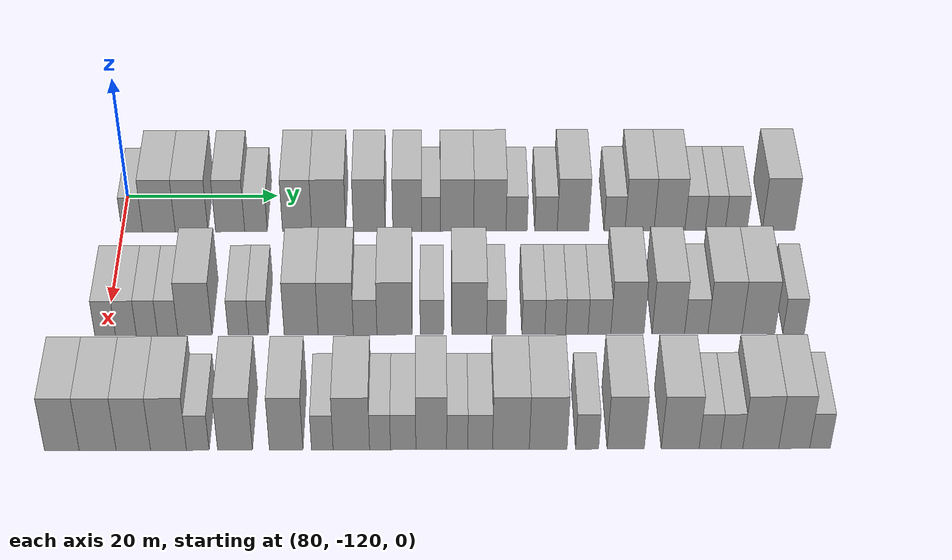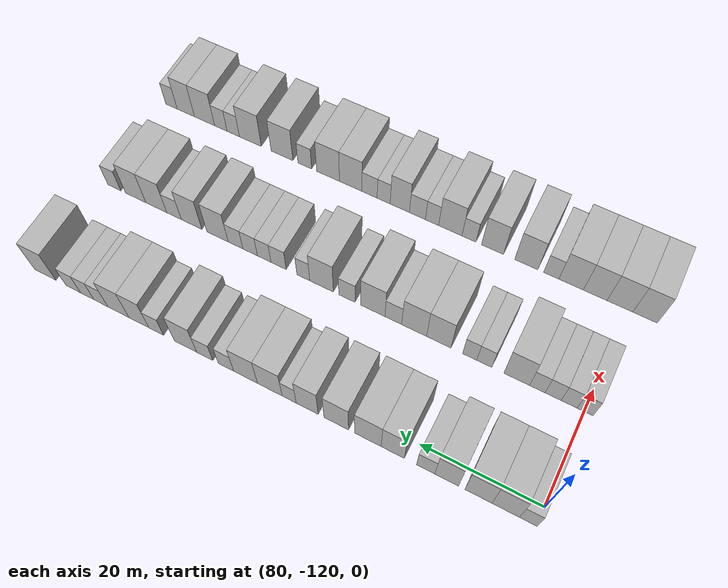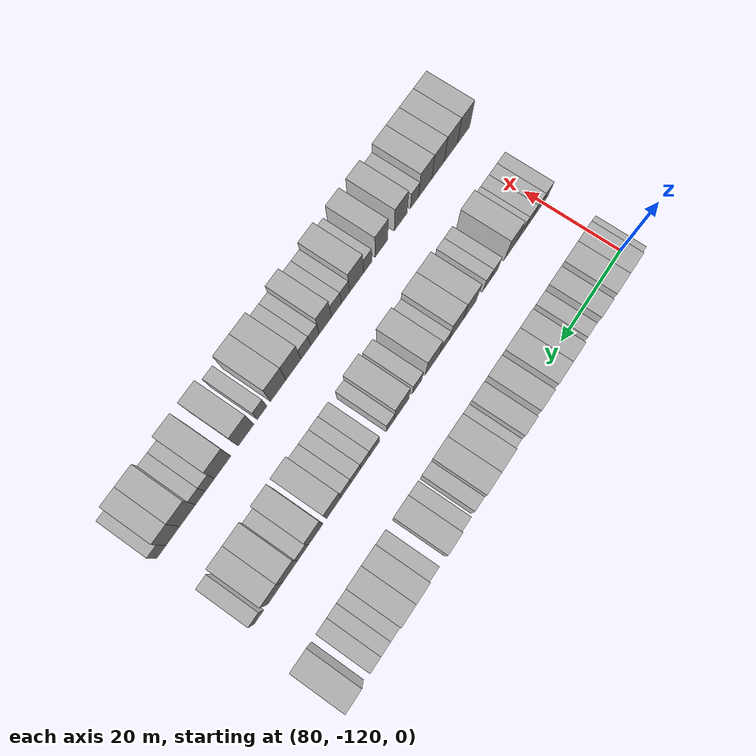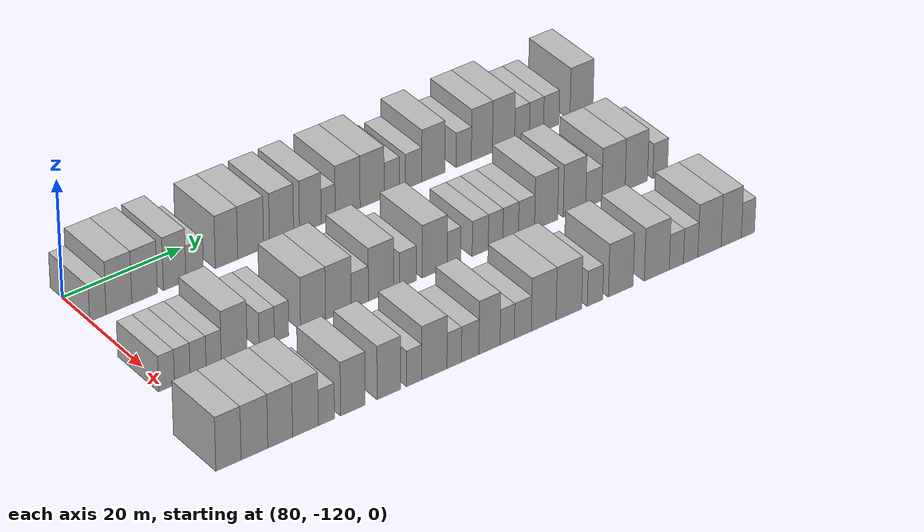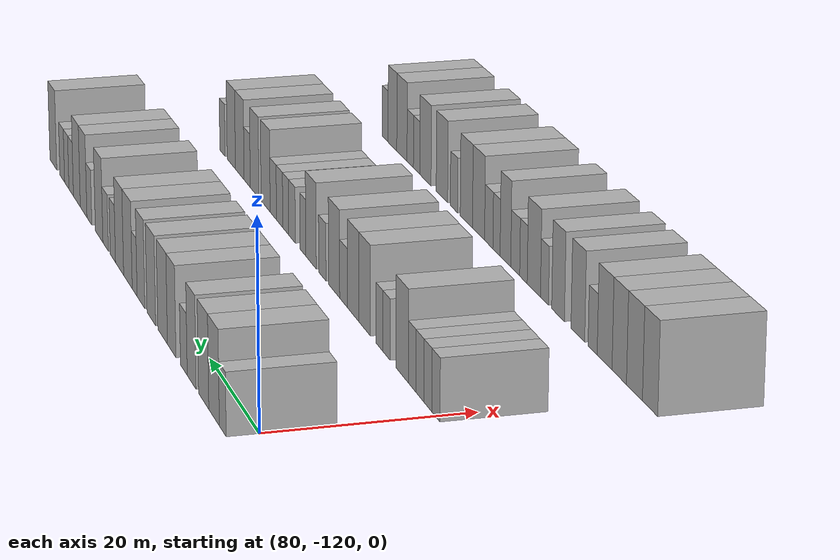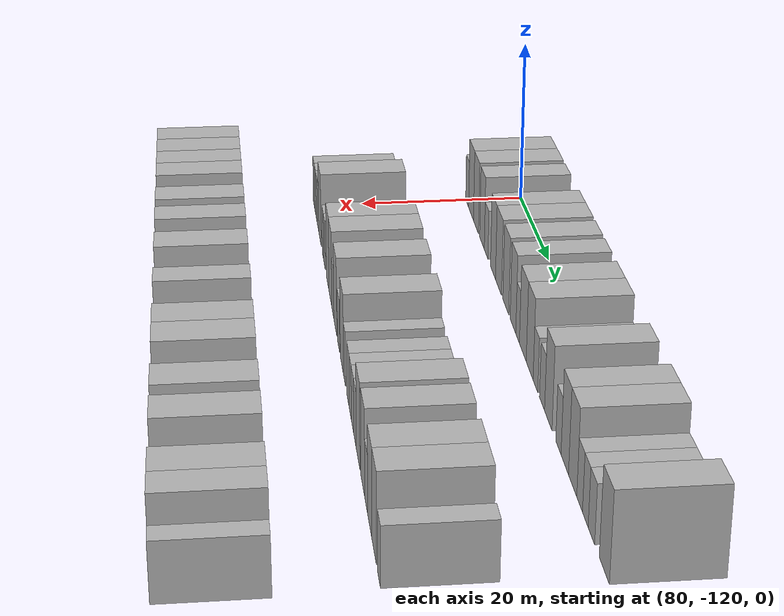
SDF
<sdf version="1.6">
 <world name="default">
  <model name="building_580">
   <static>1</static>
   <pose>82.0000 -118.6920 0 0.000000 0.000000 0.000000</pose>
   <link name="link">
    <pose>0 0 3.00 0 0 0</pose>
    <collision name="collision"><geometry><box><size>10.0000 2.7208 6.0000</size></box></geometry></collision>
    <visual name="visual">
     <cast_shadows>0</cast_shadows>
     <geometry><box><size>10.0000 2.7208 6.0000</size></box></geometry>
     <material>
      <script>
       <uri>model://HANNAS_wall/materials/scripts</uri>
       <uri>model://HANNAS_wall/materials/textures</uri>
       <name>vrc/HANNAS_wall</name>
      </script>
     </material>
    </visual>
   </link>
  </model>
  <model name="building_581">
   <static>1</static>
   <pose>82.0000 -115.1905 0 0.000000 0.000000 0.000000</pose>
   <link name="link">
    <pose>0 0 4.50 0 0 0</pose>
    <collision name="collision"><geometry><box><size>10.0000 4.2822 9.0000</size></box></geometry></collision>
    <visual name="visual">
     <cast_shadows>0</cast_shadows>
     <geometry><box><size>10.0000 4.2822 9.0000</size></box></geometry>
     <material>
      <script>
       <uri>model://HANNAS_wall/materials/scripts</uri>
       <uri>model://HANNAS_wall/materials/textures</uri>
       <name>vrc/HANNAS_wall</name>
      </script>
     </material>
    </visual>
   </link>
  </model>
  <model name="building_582">
   <static>1</static>
   <pose>82.0000 -110.9012 0 0.000000 0.000000 0.000000</pose>
   <link name="link">
    <pose>0 0 4.50 0 0 0</pose>
    <collision name="collision"><geometry><box><size>10.0000 4.2965 9.0000</size></box></geometry></collision>
    <visual name="visual">
     <cast_shadows>0</cast_shadows>
     <geometry><box><size>10.0000 4.2965 9.0000</size></box></geometry>
     <material>
      <script>
       <uri>model://HANNAS_wall/materials/scripts</uri>
       <uri>model://HANNAS_wall/materials/textures</uri>
       <name>vrc/HANNAS_wall</name>
      </script>
     </material>
    </visual>
   </link>
  </model>
  <model name="building_583">
   <static>1</static>
   <pose>82.0000 -105.8392 0 0.000000 0.000000 0.000000</pose>
   <link name="link">
    <pose>0 0 4.50 0 0 0</pose>
    <collision name="collision"><geometry><box><size>10.0000 3.8275 9.0000</size></box></geometry></collision>
    <visual name="visual">
     <cast_shadows>0</cast_shadows>
     <geometry><box><size>10.0000 3.8275 9.0000</size></box></geometry>
     <material>
      <script>
       <uri>model://HANNAS_wall/materials/scripts</uri>
       <uri>model://HANNAS_wall/materials/textures</uri>
       <name>vrc/HANNAS_wall</name>
      </script>
     </material>
    </visual>
   </link>
  </model>
  <model name="building_584">
   <static>1</static>
   <pose>82.0000 -102.4418 0 0.000000 0.000000 0.000000</pose>
   <link name="link">
    <pose>0 0 3.00 0 0 0</pose>
    <collision name="collision"><geometry><box><size>10.0000 2.9673 6.0000</size></box></geometry></collision>
    <visual name="visual">
     <cast_shadows>0</cast_shadows>
     <geometry><box><size>10.0000 2.9673 6.0000</size></box></geometry>
     <material>
      <script>
       <uri>model://HANNAS_wall/materials/scripts</uri>
       <uri>model://HANNAS_wall/materials/textures</uri>
       <name>vrc/HANNAS_wall</name>
      </script>
     </material>
    </visual>
   </link>
  </model>
  <model name="building_585">
   <static>1</static>
   <pose>82.0000 -97.0383 0 0.000000 0.000000 0.000000</pose>
   <link name="link">
    <pose>0 0 4.50 0 0 0</pose>
    <collision name="collision"><geometry><box><size>10.0000 3.8398 9.0000</size></box></geometry></collision>
    <visual name="visual">
     <cast_shadows>0</cast_shadows>
     <geometry><box><size>10.0000 3.8398 9.0000</size></box></geometry>
     <material>
      <script>
       <uri>model://HANNAS_wall/materials/scripts</uri>
       <uri>model://HANNAS_wall/materials/textures</uri>
       <name>vrc/HANNAS_wall</name>
      </script>
     </material>
    </visual>
   </link>
  </model>
  <model name="building_586">
   <static>1</static>
   <pose>82.0000 -92.8874 0 0.000000 0.000000 0.000000</pose>
   <link name="link">
    <pose>0 0 4.50 0 0 0</pose>
    <collision name="collision"><geometry><box><size>10.0000 4.4619 9.0000</size></box></geometry></collision>
    <visual name="visual">
     <cast_shadows>0</cast_shadows>
     <geometry><box><size>10.0000 4.4619 9.0000</size></box></geometry>
     <material>
      <script>
       <uri>model://HANNAS_wall/materials/scripts</uri>
       <uri>model://HANNAS_wall/materials/textures</uri>
       <name>vrc/HANNAS_wall</name>
      </script>
     </material>
    </visual>
   </link>
  </model>
  <model name="building_587">
   <static>1</static>
   <pose>82.0000 -87.5685 0 0.000000 0.000000 0.000000</pose>
   <link name="link">
    <pose>0 0 4.50 0 0 0</pose>
    <collision name="collision"><geometry><box><size>10.0000 4.1759 9.0000</size></box></geometry></collision>
    <visual name="visual">
     <cast_shadows>0</cast_shadows>
     <geometry><box><size>10.0000 4.1759 9.0000</size></box></geometry>
     <material>
      <script>
       <uri>model://HANNAS_wall/materials/scripts</uri>
       <uri>model://HANNAS_wall/materials/textures</uri>
       <name>vrc/HANNAS_wall</name>
      </script>
     </material>
    </visual>
   </link>
  </model>
  <model name="building_588">
   <static>1</static>
   <pose>82.0000 -82.5807 0 0.000000 0.000000 0.000000</pose>
   <link name="link">
    <pose>0 0 4.50 0 0 0</pose>
    <collision name="collision"><geometry><box><size>10.0000 3.7998 9.0000</size></box></geometry></collision>
    <visual name="visual">
     <cast_shadows>0</cast_shadows>
     <geometry><box><size>10.0000 3.7998 9.0000</size></box></geometry>
     <material>
      <script>
       <uri>model://HANNAS_wall/materials/scripts</uri>
       <uri>model://HANNAS_wall/materials/textures</uri>
       <name>vrc/HANNAS_wall</name>
      </script>
     </material>
    </visual>
   </link>
  </model>
  <model name="building_589">
   <static>1</static>
   <pose>82.0000 -79.4624 0 0.000000 0.000000 0.000000</pose>
   <link name="link">
    <pose>0 0 3.00 0 0 0</pose>
    <collision name="collision"><geometry><box><size>10.0000 2.4368 6.0000</size></box></geometry></collision>
    <visual name="visual">
     <cast_shadows>0</cast_shadows>
     <geometry><box><size>10.0000 2.4368 6.0000</size></box></geometry>
     <material>
      <script>
       <uri>model://HANNAS_wall/materials/scripts</uri>
       <uri>model://HANNAS_wall/materials/textures</uri>
       <name>vrc/HANNAS_wall</name>
      </script>
     </material>
    </visual>
   </link>
  </model>
  <model name="building_590">
   <static>1</static>
   <pose>82.0000 -76.0565 0 0.000000 0.000000 0.000000</pose>
   <link name="link">
    <pose>0 0 4.50 0 0 0</pose>
    <collision name="collision"><geometry><box><size>10.0000 4.3750 9.0000</size></box></geometry></collision>
    <visual name="visual">
     <cast_shadows>0</cast_shadows>
     <geometry><box><size>10.0000 4.3750 9.0000</size></box></geometry>
     <material>
      <script>
       <uri>model://HANNAS_wall/materials/scripts</uri>
       <uri>model://HANNAS_wall/materials/textures</uri>
       <name>vrc/HANNAS_wall</name>
      </script>
     </material>
    </visual>
   </link>
  </model>
  <model name="building_591">
   <static>1</static>
   <pose>82.0000 -71.7445 0 0.000000 0.000000 0.000000</pose>
   <link name="link">
    <pose>0 0 4.50 0 0 0</pose>
    <collision name="collision"><geometry><box><size>10.0000 4.2490 9.0000</size></box></geometry></collision>
    <visual name="visual">
     <cast_shadows>0</cast_shadows>
     <geometry><box><size>10.0000 4.2490 9.0000</size></box></geometry>
     <material>
      <script>
       <uri>model://HANNAS_wall/materials/scripts</uri>
       <uri>model://HANNAS_wall/materials/textures</uri>
       <name>vrc/HANNAS_wall</name>
      </script>
     </material>
    </visual>
   </link>
  </model>
  <model name="building_592">
   <static>1</static>
   <pose>82.0000 -68.2290 0 0.000000 0.000000 0.000000</pose>
   <link name="link">
    <pose>0 0 3.00 0 0 0</pose>
    <collision name="collision"><geometry><box><size>10.0000 2.7820 6.0000</size></box></geometry></collision>
    <visual name="visual">
     <cast_shadows>0</cast_shadows>
     <geometry><box><size>10.0000 2.7820 6.0000</size></box></geometry>
     <material>
      <script>
       <uri>model://HANNAS_wall/materials/scripts</uri>
       <uri>model://HANNAS_wall/materials/textures</uri>
       <name>vrc/HANNAS_wall</name>
      </script>
     </material>
    </visual>
   </link>
  </model>
  <model name="building_593">
   <static>1</static>
   <pose>82.0000 -64.3658 0 0.000000 0.000000 0.000000</pose>
   <link name="link">
    <pose>0 0 3.00 0 0 0</pose>
    <collision name="collision"><geometry><box><size>10.0000 2.9443 6.0000</size></box></geometry></collision>
    <visual name="visual">
     <cast_shadows>0</cast_shadows>
     <geometry><box><size>10.0000 2.9443 6.0000</size></box></geometry>
     <material>
      <script>
       <uri>model://HANNAS_wall/materials/scripts</uri>
       <uri>model://HANNAS_wall/materials/textures</uri>
       <name>vrc/HANNAS_wall</name>
      </script>
     </material>
    </visual>
   </link>
  </model>
  <model name="building_594">
   <static>1</static>
   <pose>82.0000 -60.8182 0 0.000000 0.000000 0.000000</pose>
   <link name="link">
    <pose>0 0 4.50 0 0 0</pose>
    <collision name="collision"><geometry><box><size>10.0000 4.1509 9.0000</size></box></geometry></collision>
    <visual name="visual">
     <cast_shadows>0</cast_shadows>
     <geometry><box><size>10.0000 4.1509 9.0000</size></box></geometry>
     <material>
      <script>
       <uri>model://HANNAS_wall/materials/scripts</uri>
       <uri>model://HANNAS_wall/materials/textures</uri>
       <name>vrc/HANNAS_wall</name>
      </script>
     </material>
    </visual>
   </link>
  </model>
  <model name="building_595">
   <static>1</static>
   <pose>82.0000 -55.3543 0 0.000000 0.000000 0.000000</pose>
   <link name="link">
    <pose>0 0 3.00 0 0 0</pose>
    <collision name="collision"><geometry><box><size>10.0000 2.7769 6.0000</size></box></geometry></collision>
    <visual name="visual">
     <cast_shadows>0</cast_shadows>
     <geometry><box><size>10.0000 2.7769 6.0000</size></box></geometry>
     <material>
      <script>
       <uri>model://HANNAS_wall/materials/scripts</uri>
       <uri>model://HANNAS_wall/materials/textures</uri>
       <name>vrc/HANNAS_wall</name>
      </script>
     </material>
    </visual>
   </link>
  </model>
  <model name="building_596">
   <static>1</static>
   <pose>82.0000 -52.0593 0 0.000000 0.000000 0.000000</pose>
   <link name="link">
    <pose>0 0 4.50 0 0 0</pose>
    <collision name="collision"><geometry><box><size>10.0000 3.8131 9.0000</size></box></geometry></collision>
    <visual name="visual">
     <cast_shadows>0</cast_shadows>
     <geometry><box><size>10.0000 3.8131 9.0000</size></box></geometry>
     <material>
      <script>
       <uri>model://HANNAS_wall/materials/scripts</uri>
       <uri>model://HANNAS_wall/materials/textures</uri>
       <name>vrc/HANNAS_wall</name>
      </script>
     </material>
    </visual>
   </link>
  </model>
  <model name="building_597">
   <static>1</static>
   <pose>82.0000 -48.1294 0 0.000000 0.000000 0.000000</pose>
   <link name="link">
    <pose>0 0 4.50 0 0 0</pose>
    <collision name="collision"><geometry><box><size>10.0000 4.0466 9.0000</size></box></geometry></collision>
    <visual name="visual">
     <cast_shadows>0</cast_shadows>
     <geometry><box><size>10.0000 4.0466 9.0000</size></box></geometry>
     <material>
      <script>
       <uri>model://HANNAS_wall/materials/scripts</uri>
       <uri>model://HANNAS_wall/materials/textures</uri>
       <name>vrc/HANNAS_wall</name>
      </script>
     </material>
    </visual>
   </link>
  </model>
  <model name="building_598">
   <static>1</static>
   <pose>82.0000 -44.7589 0 0.000000 0.000000 0.000000</pose>
   <link name="link">
    <pose>0 0 3.00 0 0 0</pose>
    <collision name="collision"><geometry><box><size>10.0000 2.6945 6.0000</size></box></geometry></collision>
    <visual name="visual">
     <cast_shadows>0</cast_shadows>
     <geometry><box><size>10.0000 2.6945 6.0000</size></box></geometry>
     <material>
      <script>
       <uri>model://HANNAS_wall/materials/scripts</uri>
       <uri>model://HANNAS_wall/materials/textures</uri>
       <name>vrc/HANNAS_wall</name>
      </script>
     </material>
    </visual>
   </link>
  </model>
  <model name="building_599">
   <static>1</static>
   <pose>82.0000 -42.1036 0 0.000000 0.000000 0.000000</pose>
   <link name="link">
    <pose>0 0 3.00 0 0 0</pose>
    <collision name="collision"><geometry><box><size>10.0000 2.6161 6.0000</size></box></geometry></collision>
    <visual name="visual">
     <cast_shadows>0</cast_shadows>
     <geometry><box><size>10.0000 2.6161 6.0000</size></box></geometry>
     <material>
      <script>
       <uri>model://HANNAS_wall/materials/scripts</uri>
       <uri>model://HANNAS_wall/materials/textures</uri>
       <name>vrc/HANNAS_wall</name>
      </script>
     </material>
    </visual>
   </link>
  </model>
  <model name="building_600">
   <static>1</static>
   <pose>82.0000 -39.3558 0 0.000000 0.000000 0.000000</pose>
   <link name="link">
    <pose>0 0 3.00 0 0 0</pose>
    <collision name="collision"><geometry><box><size>10.0000 2.8793 6.0000</size></box></geometry></collision>
    <visual name="visual">
     <cast_shadows>0</cast_shadows>
     <geometry><box><size>10.0000 2.8793 6.0000</size></box></geometry>
     <material>
      <script>
       <uri>model://HANNAS_wall/materials/scripts</uri>
       <uri>model://HANNAS_wall/materials/textures</uri>
       <name>vrc/HANNAS_wall</name>
      </script>
     </material>
    </visual>
   </link>
  </model>
  <model name="building_601">
   <static>1</static>
   <pose>82.0000 -33.7802 0 0.000000 0.000000 0.000000</pose>
   <link name="link">
    <pose>0 0 4.50 0 0 0</pose>
    <collision name="collision"><geometry><box><size>10.0000 4.2720 9.0000</size></box></geometry></collision>
    <visual name="visual">
     <cast_shadows>0</cast_shadows>
     <geometry><box><size>10.0000 4.2720 9.0000</size></box></geometry>
     <material>
      <script>
       <uri>model://HANNAS_wall/materials/scripts</uri>
       <uri>model://HANNAS_wall/materials/textures</uri>
       <name>vrc/HANNAS_wall</name>
      </script>
     </material>
    </visual>
   </link>
  </model>
  <model name="building_753">
   <static>1</static>
   <pose>101.0000 -120.1035 0 0.000000 0.000000 0.000000</pose>
   <link name="link">
    <pose>0 0 3.00 0 0 0</pose>
    <collision name="collision"><geometry><box><size>10.0000 2.5795 6.0000</size></box></geometry></collision>
    <visual name="visual">
     <cast_shadows>0</cast_shadows>
     <geometry><box><size>10.0000 2.5795 6.0000</size></box></geometry>
     <material>
      <script>
       <uri>model://HANNAS_wall/materials/scripts</uri>
       <uri>model://HANNAS_wall/materials/textures</uri>
       <name>vrc/HANNAS_wall</name>
      </script>
     </material>
    </visual>
   </link>
  </model>
  <model name="building_754">
   <static>1</static>
   <pose>101.0000 -117.5175 0 0.000000 0.000000 0.000000</pose>
   <link name="link">
    <pose>0 0 3.00 0 0 0</pose>
    <collision name="collision"><geometry><box><size>10.0000 2.5925 6.0000</size></box></geometry></collision>
    <visual name="visual">
     <cast_shadows>0</cast_shadows>
     <geometry><box><size>10.0000 2.5925 6.0000</size></box></geometry>
     <material>
      <script>
       <uri>model://HANNAS_wall/materials/scripts</uri>
       <uri>model://HANNAS_wall/materials/textures</uri>
       <name>vrc/HANNAS_wall</name>
      </script>
     </material>
    </visual>
   </link>
  </model>
  <model name="building_755">
   <static>1</static>
   <pose>101.0000 -114.9020 0 0.000000 0.000000 0.000000</pose>
   <link name="link">
    <pose>0 0 3.00 0 0 0</pose>
    <collision name="collision"><geometry><box><size>10.0000 2.6384 6.0000</size></box></geometry></collision>
    <visual name="visual">
     <cast_shadows>0</cast_shadows>
     <geometry><box><size>10.0000 2.6384 6.0000</size></box></geometry>
     <material>
      <script>
       <uri>model://HANNAS_wall/materials/scripts</uri>
       <uri>model://HANNAS_wall/materials/textures</uri>
       <name>vrc/HANNAS_wall</name>
      </script>
     </material>
    </visual>
   </link>
  </model>
  <model name="building_756">
   <static>1</static>
   <pose>101.0000 -112.3140 0 0.000000 0.000000 0.000000</pose>
   <link name="link">
    <pose>0 0 3.00 0 0 0</pose>
    <collision name="collision"><geometry><box><size>10.0000 2.5376 6.0000</size></box></geometry></collision>
    <visual name="visual">
     <cast_shadows>0</cast_shadows>
     <geometry><box><size>10.0000 2.5376 6.0000</size></box></geometry>
     <material>
      <script>
       <uri>model://HANNAS_wall/materials/scripts</uri>
       <uri>model://HANNAS_wall/materials/textures</uri>
       <name>vrc/HANNAS_wall</name>
      </script>
     </material>
    </visual>
   </link>
  </model>
  <model name="building_757">
   <static>1</static>
   <pose>101.0000 -108.9040 0 0.000000 0.000000 0.000000</pose>
   <link name="link">
    <pose>0 0 4.50 0 0 0</pose>
    <collision name="collision"><geometry><box><size>10.0000 4.2824 9.0000</size></box></geometry></collision>
    <visual name="visual">
     <cast_shadows>0</cast_shadows>
     <geometry><box><size>10.0000 4.2824 9.0000</size></box></geometry>
     <material>
      <script>
       <uri>model://HANNAS_wall/materials/scripts</uri>
       <uri>model://HANNAS_wall/materials/textures</uri>
       <name>vrc/HANNAS_wall</name>
      </script>
     </material>
    </visual>
   </link>
  </model>
  <model name="building_758">
   <static>1</static>
   <pose>101.0000 -103.4775 0 0.000000 0.000000 0.000000</pose>
   <link name="link">
    <pose>0 0 3.00 0 0 0</pose>
    <collision name="collision"><geometry><box><size>10.0000 2.5707 6.0000</size></box></geometry></collision>
    <visual name="visual">
     <cast_shadows>0</cast_shadows>
     <geometry><box><size>10.0000 2.5707 6.0000</size></box></geometry>
     <material>
      <script>
       <uri>model://HANNAS_wall/materials/scripts</uri>
       <uri>model://HANNAS_wall/materials/textures</uri>
       <name>vrc/HANNAS_wall</name>
      </script>
     </material>
    </visual>
   </link>
  </model>
  <model name="building_759">
   <static>1</static>
   <pose>101.0000 -100.9864 0 0.000000 0.000000 0.000000</pose>
   <link name="link">
    <pose>0 0 3.00 0 0 0</pose>
    <collision name="collision"><geometry><box><size>10.0000 2.4114 6.0000</size></box></geometry></collision>
    <visual name="visual">
     <cast_shadows>0</cast_shadows>
     <geometry><box><size>10.0000 2.4114 6.0000</size></box></geometry>
     <material>
      <script>
       <uri>model://HANNAS_wall/materials/scripts</uri>
       <uri>model://HANNAS_wall/materials/textures</uri>
       <name>vrc/HANNAS_wall</name>
      </script>
     </material>
    </visual>
   </link>
  </model>
  <model name="building_760">
   <static>1</static>
   <pose>101.0000 -95.6672 0 0.000000 0.000000 0.000000</pose>
   <link name="link">
    <pose>0 0 4.50 0 0 0</pose>
    <collision name="collision"><geometry><box><size>10.0000 4.2270 9.0000</size></box></geometry></collision>
    <visual name="visual">
     <cast_shadows>0</cast_shadows>
     <geometry><box><size>10.0000 4.2270 9.0000</size></box></geometry>
     <material>
      <script>
       <uri>model://HANNAS_wall/materials/scripts</uri>
       <uri>model://HANNAS_wall/materials/textures</uri>
       <name>vrc/HANNAS_wall</name>
      </script>
     </material>
    </visual>
   </link>
  </model>
  <model name="building_761">
   <static>1</static>
   <pose>101.0000 -91.3578 0 0.000000 0.000000 0.000000</pose>
   <link name="link">
    <pose>0 0 4.50 0 0 0</pose>
    <collision name="collision"><geometry><box><size>10.0000 4.3919 9.0000</size></box></geometry></collision>
    <visual name="visual">
     <cast_shadows>0</cast_shadows>
     <geometry><box><size>10.0000 4.3919 9.0000</size></box></geometry>
     <material>
      <script>
       <uri>model://HANNAS_wall/materials/scripts</uri>
       <uri>model://HANNAS_wall/materials/textures</uri>
       <name>vrc/HANNAS_wall</name>
      </script>
     </material>
    </visual>
   </link>
  </model>
  <model name="building_762">
   <static>1</static>
   <pose>101.0000 -87.6898 0 0.000000 0.000000 0.000000</pose>
   <link name="link">
    <pose>0 0 3.00 0 0 0</pose>
    <collision name="collision"><geometry><box><size>10.0000 2.9440 6.0000</size></box></geometry></collision>
    <visual name="visual">
     <cast_shadows>0</cast_shadows>
     <geometry><box><size>10.0000 2.9440 6.0000</size></box></geometry>
     <material>
      <script>
       <uri>model://HANNAS_wall/materials/scripts</uri>
       <uri>model://HANNAS_wall/materials/textures</uri>
       <name>vrc/HANNAS_wall</name>
      </script>
     </material>
    </visual>
   </link>
  </model>
  <model name="building_763">
   <static>1</static>
   <pose>101.0000 -84.0269 0 0.000000 0.000000 0.000000</pose>
   <link name="link">
    <pose>0 0 4.50 0 0 0</pose>
    <collision name="collision"><geometry><box><size>10.0000 4.3819 9.0000</size></box></geometry></collision>
    <visual name="visual">
     <cast_shadows>0</cast_shadows>
     <geometry><box><size>10.0000 4.3819 9.0000</size></box></geometry>
     <material>
      <script>
       <uri>model://HANNAS_wall/materials/scripts</uri>
       <uri>model://HANNAS_wall/materials/textures</uri>
       <name>vrc/HANNAS_wall</name>
      </script>
     </material>
    </visual>
   </link>
  </model>
  <model name="building_764">
   <static>1</static>
   <pose>101.0000 -79.3674 0 0.000000 0.000000 0.000000</pose>
   <link name="link">
    <pose>0 0 3.00 0 0 0</pose>
    <collision name="collision"><geometry><box><size>10.0000 2.9370 6.0000</size></box></geometry></collision>
    <visual name="visual">
     <cast_shadows>0</cast_shadows>
     <geometry><box><size>10.0000 2.9370 6.0000</size></box></geometry>
     <material>
      <script>
       <uri>model://HANNAS_wall/materials/scripts</uri>
       <uri>model://HANNAS_wall/materials/textures</uri>
       <name>vrc/HANNAS_wall</name>
      </script>
     </material>
    </visual>
   </link>
  </model>
  <model name="building_765">
   <static>1</static>
   <pose>101.0000 -74.7271 0 0.000000 0.000000 0.000000</pose>
   <link name="link">
    <pose>0 0 4.50 0 0 0</pose>
    <collision name="collision"><geometry><box><size>10.0000 4.3436 9.0000</size></box></geometry></collision>
    <visual name="visual">
     <cast_shadows>0</cast_shadows>
     <geometry><box><size>10.0000 4.3436 9.0000</size></box></geometry>
     <material>
      <script>
       <uri>model://HANNAS_wall/materials/scripts</uri>
       <uri>model://HANNAS_wall/materials/textures</uri>
       <name>vrc/HANNAS_wall</name>
      </script>
     </material>
    </visual>
   </link>
  </model>
  <model name="building_766">
   <static>1</static>
   <pose>101.0000 -71.3537 0 0.000000 0.000000 0.000000</pose>
   <link name="link">
    <pose>0 0 3.00 0 0 0</pose>
    <collision name="collision"><geometry><box><size>10.0000 2.4032 6.0000</size></box></geometry></collision>
    <visual name="visual">
     <cast_shadows>0</cast_shadows>
     <geometry><box><size>10.0000 2.4032 6.0000</size></box></geometry>
     <material>
      <script>
       <uri>model://HANNAS_wall/materials/scripts</uri>
       <uri>model://HANNAS_wall/materials/textures</uri>
       <name>vrc/HANNAS_wall</name>
      </script>
     </material>
    </visual>
   </link>
  </model>
  <model name="building_767">
   <static>1</static>
   <pose>101.0000 -66.7197 0 0.000000 0.000000 0.000000</pose>
   <link name="link">
    <pose>0 0 3.00 0 0 0</pose>
    <collision name="collision"><geometry><box><size>10.0000 2.8647 6.0000</size></box></geometry></collision>
    <visual name="visual">
     <cast_shadows>0</cast_shadows>
     <geometry><box><size>10.0000 2.8647 6.0000</size></box></geometry>
     <material>
      <script>
       <uri>model://HANNAS_wall/materials/scripts</uri>
       <uri>model://HANNAS_wall/materials/textures</uri>
       <name>vrc/HANNAS_wall</name>
      </script>
     </material>
    </visual>
   </link>
  </model>
  <model name="building_768">
   <static>1</static>
   <pose>101.0000 -63.9979 0 0.000000 0.000000 0.000000</pose>
   <link name="link">
    <pose>0 0 3.00 0 0 0</pose>
    <collision name="collision"><geometry><box><size>10.0000 2.5788 6.0000</size></box></geometry></collision>
    <visual name="visual">
     <cast_shadows>0</cast_shadows>
     <geometry><box><size>10.0000 2.5788 6.0000</size></box></geometry>
     <material>
      <script>
       <uri>model://HANNAS_wall/materials/scripts</uri>
       <uri>model://HANNAS_wall/materials/textures</uri>
       <name>vrc/HANNAS_wall</name>
      </script>
     </material>
    </visual>
   </link>
  </model>
  <model name="building_769">
   <static>1</static>
   <pose>101.0000 -61.3096 0 0.000000 0.000000 0.000000</pose>
   <link name="link">
    <pose>0 0 3.00 0 0 0</pose>
    <collision name="collision"><geometry><box><size>10.0000 2.7978 6.0000</size></box></geometry></collision>
    <visual name="visual">
     <cast_shadows>0</cast_shadows>
     <geometry><box><size>10.0000 2.7978 6.0000</size></box></geometry>
     <material>
      <script>
       <uri>model://HANNAS_wall/materials/scripts</uri>
       <uri>model://HANNAS_wall/materials/textures</uri>
       <name>vrc/HANNAS_wall</name>
      </script>
     </material>
    </visual>
   </link>
  </model>
  <model name="building_770">
   <static>1</static>
   <pose>101.0000 -58.4873 0 0.000000 0.000000 0.000000</pose>
   <link name="link">
    <pose>0 0 3.00 0 0 0</pose>
    <collision name="collision"><geometry><box><size>10.0000 2.8468 6.0000</size></box></geometry></collision>
    <visual name="visual">
     <cast_shadows>0</cast_shadows>
     <geometry><box><size>10.0000 2.8468 6.0000</size></box></geometry>
     <material>
      <script>
       <uri>model://HANNAS_wall/materials/scripts</uri>
       <uri>model://HANNAS_wall/materials/textures</uri>
       <name>vrc/HANNAS_wall</name>
      </script>
     </material>
    </visual>
   </link>
  </model>
  <model name="building_771">
   <static>1</static>
   <pose>101.0000 -54.9914 0 0.000000 0.000000 0.000000</pose>
   <link name="link">
    <pose>0 0 4.50 0 0 0</pose>
    <collision name="collision"><geometry><box><size>10.0000 4.1452 9.0000</size></box></geometry></collision>
    <visual name="visual">
     <cast_shadows>0</cast_shadows>
     <geometry><box><size>10.0000 4.1452 9.0000</size></box></geometry>
     <material>
      <script>
       <uri>model://HANNAS_wall/materials/scripts</uri>
       <uri>model://HANNAS_wall/materials/textures</uri>
       <name>vrc/HANNAS_wall</name>
      </script>
     </material>
    </visual>
   </link>
  </model>
  <model name="building_772">
   <static>1</static>
   <pose>101.0000 -49.8852 0 0.000000 0.000000 0.000000</pose>
   <link name="link">
    <pose>0 0 4.50 0 0 0</pose>
    <collision name="collision"><geometry><box><size>10.0000 4.0671 9.0000</size></box></geometry></collision>
    <visual name="visual">
     <cast_shadows>0</cast_shadows>
     <geometry><box><size>10.0000 4.0671 9.0000</size></box></geometry>
     <material>
      <script>
       <uri>model://HANNAS_wall/materials/scripts</uri>
       <uri>model://HANNAS_wall/materials/textures</uri>
       <name>vrc/HANNAS_wall</name>
      </script>
     </material>
    </visual>
   </link>
  </model>
  <model name="building_773">
   <static>1</static>
   <pose>101.0000 -46.3900 0 0.000000 0.000000 0.000000</pose>
   <link name="link">
    <pose>0 0 3.00 0 0 0</pose>
    <collision name="collision"><geometry><box><size>10.0000 2.9234 6.0000</size></box></geometry></collision>
    <visual name="visual">
     <cast_shadows>0</cast_shadows>
     <geometry><box><size>10.0000 2.9234 6.0000</size></box></geometry>
     <material>
      <script>
       <uri>model://HANNAS_wall/materials/scripts</uri>
       <uri>model://HANNAS_wall/materials/textures</uri>
       <name>vrc/HANNAS_wall</name>
      </script>
     </material>
    </visual>
   </link>
  </model>
  <model name="building_774">
   <static>1</static>
   <pose>101.0000 -42.8133 0 0.000000 0.000000 0.000000</pose>
   <link name="link">
    <pose>0 0 4.50 0 0 0</pose>
    <collision name="collision"><geometry><box><size>10.0000 4.2299 9.0000</size></box></geometry></collision>
    <visual name="visual">
     <cast_shadows>0</cast_shadows>
     <geometry><box><size>10.0000 4.2299 9.0000</size></box></geometry>
     <material>
      <script>
       <uri>model://HANNAS_wall/materials/scripts</uri>
       <uri>model://HANNAS_wall/materials/textures</uri>
       <name>vrc/HANNAS_wall</name>
      </script>
     </material>
    </visual>
   </link>
  </model>
  <model name="building_775">
   <static>1</static>
   <pose>101.0000 -38.6399 0 0.000000 0.000000 0.000000</pose>
   <link name="link">
    <pose>0 0 4.50 0 0 0</pose>
    <collision name="collision"><geometry><box><size>10.0000 4.1168 9.0000</size></box></geometry></collision>
    <visual name="visual">
     <cast_shadows>0</cast_shadows>
     <geometry><box><size>10.0000 4.1168 9.0000</size></box></geometry>
     <material>
      <script>
       <uri>model://HANNAS_wall/materials/scripts</uri>
       <uri>model://HANNAS_wall/materials/textures</uri>
       <name>vrc/HANNAS_wall</name>
      </script>
     </material>
    </visual>
   </link>
  </model>
  <model name="building_776">
   <static>1</static>
   <pose>101.0000 -34.2400 0 0.000000 0.000000 0.000000</pose>
   <link name="link">
    <pose>0 0 3.00 0 0 0</pose>
    <collision name="collision"><geometry><box><size>10.0000 2.6830 6.0000</size></box></geometry></collision>
    <visual name="visual">
     <cast_shadows>0</cast_shadows>
     <geometry><box><size>10.0000 2.6830 6.0000</size></box></geometry>
     <material>
      <script>
       <uri>model://HANNAS_wall/materials/scripts</uri>
       <uri>model://HANNAS_wall/materials/textures</uri>
       <name>vrc/HANNAS_wall</name>
      </script>
     </material>
    </visual>
   </link>
  </model>
  <model name="building_937">
   <static>1</static>
   <pose>120.0000 -123.0481 0 0.000000 0.000000 0.000000</pose>
   <link name="link">
    <pose>0 0 4.50 0 0 0</pose>
    <collision name="collision"><geometry><box><size>10.0000 4.0897 9.0000</size></box></geometry></collision>
    <visual name="visual">
     <cast_shadows>0</cast_shadows>
     <geometry><box><size>10.0000 4.0897 9.0000</size></box></geometry>
     <material>
      <script>
       <uri>model://HANNAS_wall/materials/scripts</uri>
       <uri>model://HANNAS_wall/materials/textures</uri>
       <name>vrc/HANNAS_wall</name>
      </script>
     </material>
    </visual>
   </link>
  </model>
  <model name="building_938">
   <static>1</static>
   <pose>120.0000 -118.8239 0 0.000000 0.000000 0.000000</pose>
   <link name="link">
    <pose>0 0 4.50 0 0 0</pose>
    <collision name="collision"><geometry><box><size>10.0000 4.3589 9.0000</size></box></geometry></collision>
    <visual name="visual">
     <cast_shadows>0</cast_shadows>
     <geometry><box><size>10.0000 4.3589 9.0000</size></box></geometry>
     <material>
      <script>
       <uri>model://HANNAS_wall/materials/scripts</uri>
       <uri>model://HANNAS_wall/materials/textures</uri>
       <name>vrc/HANNAS_wall</name>
      </script>
     </material>
    </visual>
   </link>
  </model>
  <model name="building_939">
   <static>1</static>
   <pose>120.0000 -114.6181 0 0.000000 0.000000 0.000000</pose>
   <link name="link">
    <pose>0 0 4.50 0 0 0</pose>
    <collision name="collision"><geometry><box><size>10.0000 4.0526 9.0000</size></box></geometry></collision>
    <visual name="visual">
     <cast_shadows>0</cast_shadows>
     <geometry><box><size>10.0000 4.0526 9.0000</size></box></geometry>
     <material>
      <script>
       <uri>model://HANNAS_wall/materials/scripts</uri>
       <uri>model://HANNAS_wall/materials/textures</uri>
       <name>vrc/HANNAS_wall</name>
      </script>
     </material>
    </visual>
   </link>
  </model>
  <model name="building_940">
   <static>1</static>
   <pose>120.0000 -110.4686 0 0.000000 0.000000 0.000000</pose>
   <link name="link">
    <pose>0 0 4.50 0 0 0</pose>
    <collision name="collision"><geometry><box><size>10.0000 4.2464 9.0000</size></box></geometry></collision>
    <visual name="visual">
     <cast_shadows>0</cast_shadows>
     <geometry><box><size>10.0000 4.2464 9.0000</size></box></geometry>
     <material>
      <script>
       <uri>model://HANNAS_wall/materials/scripts</uri>
       <uri>model://HANNAS_wall/materials/textures</uri>
       <name>vrc/HANNAS_wall</name>
      </script>
     </material>
    </visual>
   </link>
  </model>
  <model name="building_941">
   <static>1</static>
   <pose>120.0000 -107.0101 0 0.000000 0.000000 0.000000</pose>
   <link name="link">
    <pose>0 0 3.00 0 0 0</pose>
    <collision name="collision"><geometry><box><size>10.0000 2.6707 6.0000</size></box></geometry></collision>
    <visual name="visual">
     <cast_shadows>0</cast_shadows>
     <geometry><box><size>10.0000 2.6707 6.0000</size></box></geometry>
     <material>
      <script>
       <uri>model://HANNAS_wall/materials/scripts</uri>
       <uri>model://HANNAS_wall/materials/textures</uri>
       <name>vrc/HANNAS_wall</name>
      </script>
     </material>
    </visual>
   </link>
  </model>
  <model name="building_942">
   <static>1</static>
   <pose>120.0000 -102.6204 0 0.000000 0.000000 0.000000</pose>
   <link name="link">
    <pose>0 0 4.50 0 0 0</pose>
    <collision name="collision"><geometry><box><size>10.0000 4.1087 9.0000</size></box></geometry></collision>
    <visual name="visual">
     <cast_shadows>0</cast_shadows>
     <geometry><box><size>10.0000 4.1087 9.0000</size></box></geometry>
     <material>
      <script>
       <uri>model://HANNAS_wall/materials/scripts</uri>
       <uri>model://HANNAS_wall/materials/textures</uri>
       <name>vrc/HANNAS_wall</name>
      </script>
     </material>
    </visual>
   </link>
  </model>
  <model name="building_943">
   <static>1</static>
   <pose>120.0000 -96.5863 0 0.000000 0.000000 0.000000</pose>
   <link name="link">
    <pose>0 0 4.50 0 0 0</pose>
    <collision name="collision"><geometry><box><size>10.0000 3.9595 9.0000</size></box></geometry></collision>
    <visual name="visual">
     <cast_shadows>0</cast_shadows>
     <geometry><box><size>10.0000 3.9595 9.0000</size></box></geometry>
     <material>
      <script>
       <uri>model://HANNAS_wall/materials/scripts</uri>
       <uri>model://HANNAS_wall/materials/textures</uri>
       <name>vrc/HANNAS_wall</name>
      </script>
     </material>
    </visual>
   </link>
  </model>
  <model name="building_944">
   <static>1</static>
   <pose>120.0000 -92.3304 0 0.000000 0.000000 0.000000</pose>
   <link name="link">
    <pose>0 0 3.00 0 0 0</pose>
    <collision name="collision"><geometry><box><size>10.0000 2.5524 6.0000</size></box></geometry></collision>
    <visual name="visual">
     <cast_shadows>0</cast_shadows>
     <geometry><box><size>10.0000 2.5524 6.0000</size></box></geometry>
     <material>
      <script>
       <uri>model://HANNAS_wall/materials/scripts</uri>
       <uri>model://HANNAS_wall/materials/textures</uri>
       <name>vrc/HANNAS_wall</name>
      </script>
     </material>
    </visual>
   </link>
  </model>
  <model name="building_945">
   <static>1</static>
   <pose>120.0000 -88.9029 0 0.000000 0.000000 0.000000</pose>
   <link name="link">
    <pose>0 0 4.50 0 0 0</pose>
    <collision name="collision"><geometry><box><size>10.0000 4.3026 9.0000</size></box></geometry></collision>
    <visual name="visual">
     <cast_shadows>0</cast_shadows>
     <geometry><box><size>10.0000 4.3026 9.0000</size></box></geometry>
     <material>
      <script>
       <uri>model://HANNAS_wall/materials/scripts</uri>
       <uri>model://HANNAS_wall/materials/textures</uri>
       <name>vrc/HANNAS_wall</name>
      </script>
     </material>
    </visual>
   </link>
  </model>
  <model name="building_946">
   <static>1</static>
   <pose>120.0000 -85.5161 0 0.000000 0.000000 0.000000</pose>
   <link name="link">
    <pose>0 0 3.00 0 0 0</pose>
    <collision name="collision"><geometry><box><size>10.0000 2.4711 6.0000</size></box></geometry></collision>
    <visual name="visual">
     <cast_shadows>0</cast_shadows>
     <geometry><box><size>10.0000 2.4711 6.0000</size></box></geometry>
     <material>
      <script>
       <uri>model://HANNAS_wall/materials/scripts</uri>
       <uri>model://HANNAS_wall/materials/textures</uri>
       <name>vrc/HANNAS_wall</name>
      </script>
     </material>
    </visual>
   </link>
  </model>
  <model name="building_947">
   <static>1</static>
   <pose>120.0000 -82.7840 0 0.000000 0.000000 0.000000</pose>
   <link name="link">
    <pose>0 0 3.00 0 0 0</pose>
    <collision name="collision"><geometry><box><size>10.0000 2.9931 6.0000</size></box></geometry></collision>
    <visual name="visual">
     <cast_shadows>0</cast_shadows>
     <geometry><box><size>10.0000 2.9931 6.0000</size></box></geometry>
     <material>
      <script>
       <uri>model://HANNAS_wall/materials/scripts</uri>
       <uri>model://HANNAS_wall/materials/textures</uri>
       <name>vrc/HANNAS_wall</name>
      </script>
     </material>
    </visual>
   </link>
  </model>
  <model name="building_948">
   <static>1</static>
   <pose>120.0000 -79.4679 0 0.000000 0.000000 0.000000</pose>
   <link name="link">
    <pose>0 0 4.50 0 0 0</pose>
    <collision name="collision"><geometry><box><size>10.0000 3.6391 9.0000</size></box></geometry></collision>
    <visual name="visual">
     <cast_shadows>0</cast_shadows>
     <geometry><box><size>10.0000 3.6391 9.0000</size></box></geometry>
     <material>
      <script>
       <uri>model://HANNAS_wall/materials/scripts</uri>
       <uri>model://HANNAS_wall/materials/textures</uri>
       <name>vrc/HANNAS_wall</name>
      </script>
     </material>
    </visual>
   </link>
  </model>
  <model name="building_949">
   <static>1</static>
   <pose>120.0000 -76.4082 0 0.000000 0.000000 0.000000</pose>
   <link name="link">
    <pose>0 0 3.00 0 0 0</pose>
    <collision name="collision"><geometry><box><size>10.0000 2.4802 6.0000</size></box></geometry></collision>
    <visual name="visual">
     <cast_shadows>0</cast_shadows>
     <geometry><box><size>10.0000 2.4802 6.0000</size></box></geometry>
     <material>
      <script>
       <uri>model://HANNAS_wall/materials/scripts</uri>
       <uri>model://HANNAS_wall/materials/textures</uri>
       <name>vrc/HANNAS_wall</name>
      </script>
     </material>
    </visual>
   </link>
  </model>
  <model name="building_950">
   <static>1</static>
   <pose>120.0000 -73.7053 0 0.000000 0.000000 0.000000</pose>
   <link name="link">
    <pose>0 0 3.00 0 0 0</pose>
    <collision name="collision"><geometry><box><size>10.0000 2.9256 6.0000</size></box></geometry></collision>
    <visual name="visual">
     <cast_shadows>0</cast_shadows>
     <geometry><box><size>10.0000 2.9256 6.0000</size></box></geometry>
     <material>
      <script>
       <uri>model://HANNAS_wall/materials/scripts</uri>
       <uri>model://HANNAS_wall/materials/textures</uri>
       <name>vrc/HANNAS_wall</name>
      </script>
     </material>
    </visual>
   </link>
  </model>
  <model name="building_951">
   <static>1</static>
   <pose>120.0000 -70.0721 0 0.000000 0.000000 0.000000</pose>
   <link name="link">
    <pose>0 0 4.50 0 0 0</pose>
    <collision name="collision"><geometry><box><size>10.0000 4.3408 9.0000</size></box></geometry></collision>
    <visual name="visual">
     <cast_shadows>0</cast_shadows>
     <geometry><box><size>10.0000 4.3408 9.0000</size></box></geometry>
     <material>
      <script>
       <uri>model://HANNAS_wall/materials/scripts</uri>
       <uri>model://HANNAS_wall/materials/textures</uri>
       <name>vrc/HANNAS_wall</name>
      </script>
     </material>
    </visual>
   </link>
  </model>
  <model name="building_952">
   <static>1</static>
   <pose>120.0000 -65.6686 0 0.000000 0.000000 0.000000</pose>
   <link name="link">
    <pose>0 0 4.50 0 0 0</pose>
    <collision name="collision"><geometry><box><size>10.0000 4.4663 9.0000</size></box></geometry></collision>
    <visual name="visual">
     <cast_shadows>0</cast_shadows>
     <geometry><box><size>10.0000 4.4663 9.0000</size></box></geometry>
     <material>
      <script>
       <uri>model://HANNAS_wall/materials/scripts</uri>
       <uri>model://HANNAS_wall/materials/textures</uri>
       <name>vrc/HANNAS_wall</name>
      </script>
     </material>
    </visual>
   </link>
  </model>
  <model name="building_953">
   <static>1</static>
   <pose>120.0000 -61.0732 0 0.000000 0.000000 0.000000</pose>
   <link name="link">
    <pose>0 0 3.00 0 0 0</pose>
    <collision name="collision"><geometry><box><size>10.0000 2.7244 6.0000</size></box></geometry></collision>
    <visual name="visual">
     <cast_shadows>0</cast_shadows>
     <geometry><box><size>10.0000 2.7244 6.0000</size></box></geometry>
     <material>
      <script>
       <uri>model://HANNAS_wall/materials/scripts</uri>
       <uri>model://HANNAS_wall/materials/textures</uri>
       <name>vrc/HANNAS_wall</name>
      </script>
     </material>
    </visual>
   </link>
  </model>
  <model name="building_954">
   <static>1</static>
   <pose>120.0000 -56.5139 0 0.000000 0.000000 0.000000</pose>
   <link name="link">
    <pose>0 0 4.50 0 0 0</pose>
    <collision name="collision"><geometry><box><size>10.0000 4.3941 9.0000</size></box></geometry></collision>
    <visual name="visual">
     <cast_shadows>0</cast_shadows>
     <geometry><box><size>10.0000 4.3941 9.0000</size></box></geometry>
     <material>
      <script>
       <uri>model://HANNAS_wall/materials/scripts</uri>
       <uri>model://HANNAS_wall/materials/textures</uri>
       <name>vrc/HANNAS_wall</name>
      </script>
     </material>
    </visual>
   </link>
  </model>
  <model name="building_955">
   <static>1</static>
   <pose>120.0000 -50.0782 0 0.000000 0.000000 0.000000</pose>
   <link name="link">
    <pose>0 0 4.50 0 0 0</pose>
    <collision name="collision"><geometry><box><size>10.0000 4.4773 9.0000</size></box></geometry></collision>
    <visual name="visual">
     <cast_shadows>0</cast_shadows>
     <geometry><box><size>10.0000 4.4773 9.0000</size></box></geometry>
     <material>
      <script>
       <uri>model://HANNAS_wall/materials/scripts</uri>
       <uri>model://HANNAS_wall/materials/textures</uri>
       <name>vrc/HANNAS_wall</name>
      </script>
     </material>
    </visual>
   </link>
  </model>
  <model name="building_956">
   <static>1</static>
   <pose>120.0000 -46.5616 0 0.000000 0.000000 0.000000</pose>
   <link name="link">
    <pose>0 0 3.00 0 0 0</pose>
    <collision name="collision"><geometry><box><size>10.0000 2.5559 6.0000</size></box></geometry></collision>
    <visual name="visual">
     <cast_shadows>0</cast_shadows>
     <geometry><box><size>10.0000 2.5559 6.0000</size></box></geometry>
     <material>
      <script>
       <uri>model://HANNAS_wall/materials/scripts</uri>
       <uri>model://HANNAS_wall/materials/textures</uri>
       <name>vrc/HANNAS_wall</name>
      </script>
     </material>
    </visual>
   </link>
  </model>
  <model name="building_957">
   <static>1</static>
   <pose>120.0000 -43.9838 0 0.000000 0.000000 0.000000</pose>
   <link name="link">
    <pose>0 0 3.00 0 0 0</pose>
    <collision name="collision"><geometry><box><size>10.0000 2.5998 6.0000</size></box></geometry></collision>
    <visual name="visual">
     <cast_shadows>0</cast_shadows>
     <geometry><box><size>10.0000 2.5998 6.0000</size></box></geometry>
     <material>
      <script>
       <uri>model://HANNAS_wall/materials/scripts</uri>
       <uri>model://HANNAS_wall/materials/textures</uri>
       <name>vrc/HANNAS_wall</name>
      </script>
     </material>
    </visual>
   </link>
  </model>
  <model name="building_958">
   <static>1</static>
   <pose>120.0000 -40.5622 0 0.000000 0.000000 0.000000</pose>
   <link name="link">
    <pose>0 0 4.50 0 0 0</pose>
    <collision name="collision"><geometry><box><size>10.0000 4.2435 9.0000</size></box></geometry></collision>
    <visual name="visual">
     <cast_shadows>0</cast_shadows>
     <geometry><box><size>10.0000 4.2435 9.0000</size></box></geometry>
     <material>
      <script>
       <uri>model://HANNAS_wall/materials/scripts</uri>
       <uri>model://HANNAS_wall/materials/textures</uri>
       <name>vrc/HANNAS_wall</name>
      </script>
     </material>
    </visual>
   </link>
  </model>
  <model name="building_959">
   <static>1</static>
   <pose>120.0000 -36.6113 0 0.000000 0.000000 0.000000</pose>
   <link name="link">
    <pose>0 0 4.50 0 0 0</pose>
    <collision name="collision"><geometry><box><size>10.0000 3.6583 9.0000</size></box></geometry></collision>
    <visual name="visual">
     <cast_shadows>0</cast_shadows>
     <geometry><box><size>10.0000 3.6583 9.0000</size></box></geometry>
     <material>
      <script>
       <uri>model://HANNAS_wall/materials/scripts</uri>
       <uri>model://HANNAS_wall/materials/textures</uri>
       <name>vrc/HANNAS_wall</name>
      </script>
     </material>
    </visual>
   </link>
  </model>
  <model name="building_960">
   <static>1</static>
   <pose>120.0000 -33.5638 0 0.000000 0.000000 0.000000</pose>
   <link name="link">
    <pose>0 0 3.00 0 0 0</pose>
    <collision name="collision"><geometry><box><size>10.0000 2.4366 6.0000</size></box></geometry></collision>
    <visual name="visual">
     <cast_shadows>0</cast_shadows>
     <geometry><box><size>10.0000 2.4366 6.0000</size></box></geometry>
     <material>
      <script>
       <uri>model://HANNAS_wall/materials/scripts</uri>
       <uri>model://HANNAS_wall/materials/textures</uri>
       <name>vrc/HANNAS_wall</name>
      </script>
     </material>
    </visual>
   </link>
  </model>
 </world>
</sdf>
